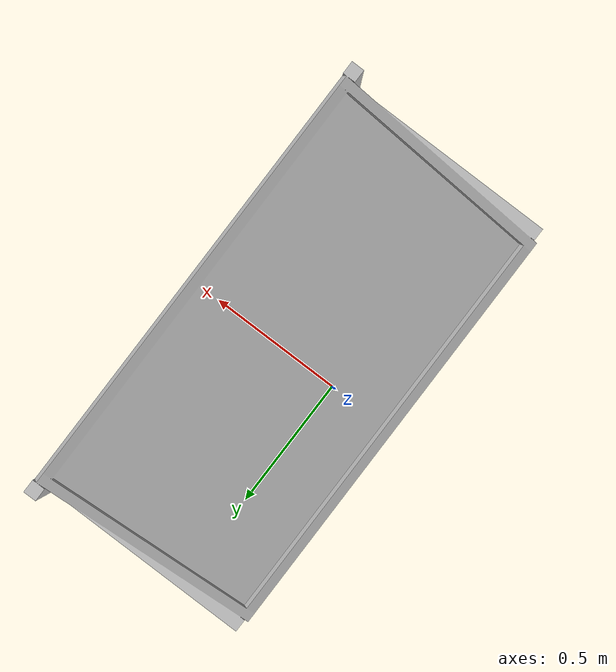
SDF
<?xml version="1.0"?>
<sdf version="1.4">

  <model name="RAAL_op30">

    <static>true</static>

    <link name="link">

      <pose>0 0 0 0 0 0</pose>

      <collision name="station_collision">
        <geometry>
          <mesh>
            <uri>model://RAAL_op30/meshes/RAAL_op30.dae</uri>
          </mesh>
        </geometry>
      </collision>

      <visual name="station_visual">
        <geometry>
          <mesh>
            <uri>model://RAAL_op30/meshes/RAAL_op30.dae</uri>
          </mesh>
        </geometry>

        <material>
          <script>
            <uri>model://RAAL_op30/materials/scripts</uri>
            <uri>model://RAAL_op30/materials/textures</uri>
          </script>
        </material>
      </visual>

    </link>

  </model>
</sdf>
